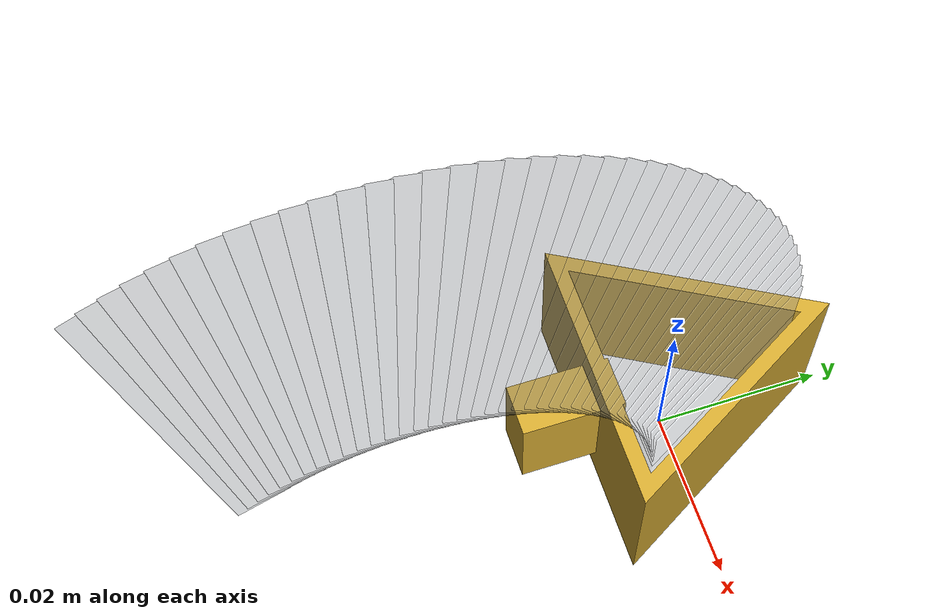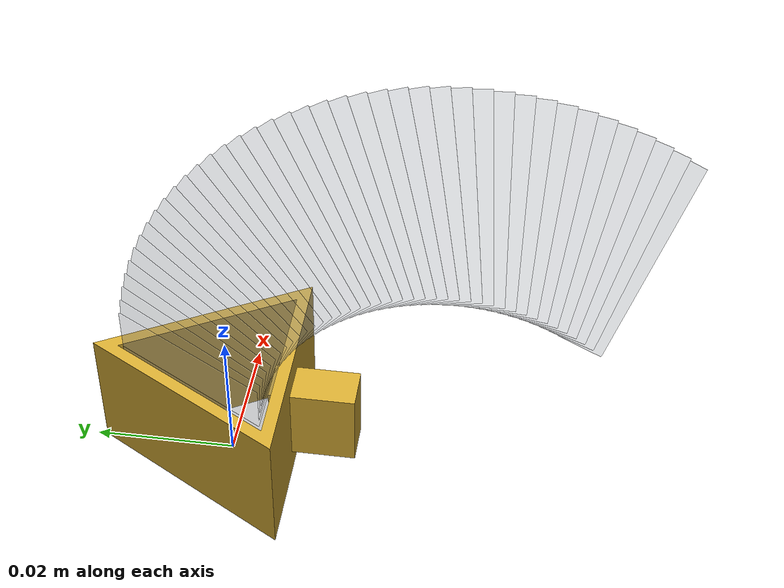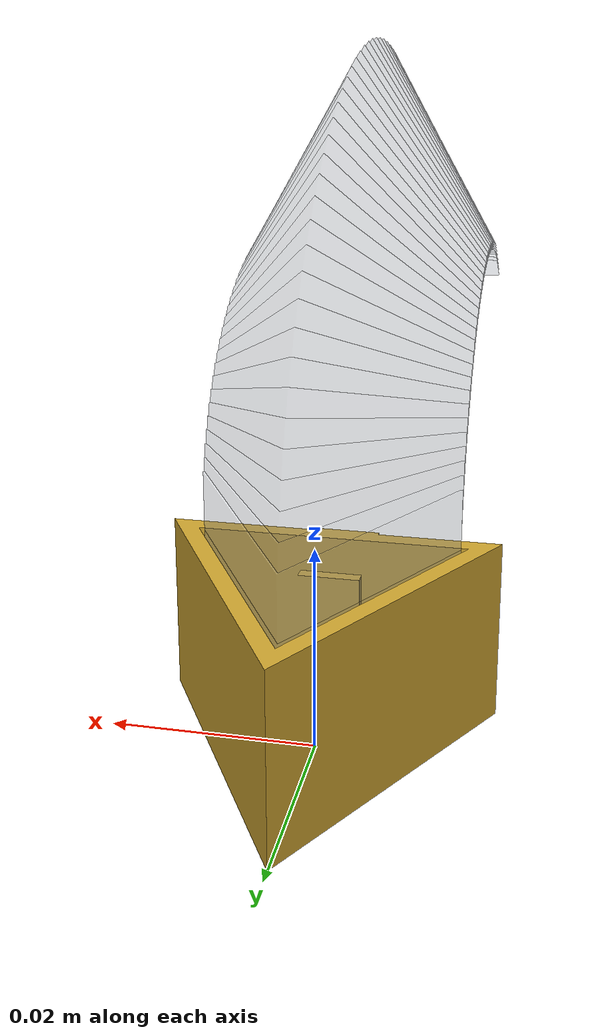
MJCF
<mujoco model="yzipper_program">
  <compiler meshdir="out" angle="radian" autolimits="true"/>
  <option gravity="0 0 0"/>
  <visual><global offwidth="960" offheight="720"/>
    <headlight ambient="0.45 0.45 0.45" diffuse="0.55 0.55 0.55" specular="0.1 0.1 0.1"/>
  </visual>
  <asset>
    <mesh name="segment" file="segment.stl" scale="0.001 0.001 0.001"/>
    <mesh name="slider"  file="slider.stl"  scale="0.001 0.001 0.001"/>
    <material name="rigid"   rgba="0.30 0.70 0.40 1"/>
    <material name="pending" rgba="0.75 0.78 0.82 0.35"/>
    <material name="slider"  rgba="0.85 0.68 0.20 1"/>
  </asset>
  <worldbody>
    <light pos="0.12 0.2 0.28" dir="-0.2 -0.4 -1"/>
    <camera name="iso" pos="0.20 0.20 0.15" xyaxes="-0.728 0.686 0 -0.130 -0.138 0.981"/>
    <geom name="seg0" type="mesh" mesh="segment" material="pending" pos="0.00000 0.00000 0.00000" quat="1.00000 0.00000 0.00000 0.00000" contype="0" conaffinity="0"/><geom name="seg1" type="mesh" mesh="segment" material="pending" pos="0.00000 0.00000 0.00600" quat="1.00000 0.00000 0.00000 0.00000" contype="0" conaffinity="0"/><geom name="seg2" type="mesh" mesh="segment" material="pending" pos="0.00000 0.00000 0.01200" quat="1.00000 0.00000 0.00000 0.00000" contype="0" conaffinity="0"/><geom name="seg3" type="mesh" mesh="segment" material="pending" pos="0.00000 0.00000 0.01800" quat="1.00000 0.00000 0.00000 0.00000" contype="0" conaffinity="0"/><geom name="seg4" type="mesh" mesh="segment" material="pending" pos="0.00000 -0.00009 0.01967" quat="0.99966 0.02618 0.00000 0.00000" contype="0" conaffinity="0"/><geom name="seg5" type="mesh" mesh="segment" material="pending" pos="0.00000 -0.00026 0.02134" quat="0.99863 0.05234 0.00000 0.00000" contype="0" conaffinity="0"/><geom name="seg6" type="mesh" mesh="segment" material="pending" pos="0.00000 -0.00052 0.02299" quat="0.99692 0.07846 0.00000 0.00000" contype="0" conaffinity="0"/><geom name="seg7" type="mesh" mesh="segment" material="pending" pos="0.00000 -0.00087 0.02463" quat="0.99452 0.10453 0.00000 0.00000" contype="0" conaffinity="0"/><geom name="seg8" type="mesh" mesh="segment" material="pending" pos="0.00000 -0.00131 0.02625" quat="0.99144 0.13053 0.00000 0.00000" contype="0" conaffinity="0"/><geom name="seg9" type="mesh" mesh="segment" material="pending" pos="0.00000 -0.00182 0.02785" quat="0.98769 0.15643 0.00000 0.00000" contype="0" conaffinity="0"/><geom name="seg10" type="mesh" mesh="segment" material="pending" pos="0.00000 -0.00243 0.02941" quat="0.98325 0.18224 0.00000 0.00000" contype="0" conaffinity="0"/><geom name="seg11" type="mesh" mesh="segment" material="pending" pos="0.00000 -0.00311 0.03094" quat="0.97815 0.20791 0.00000 0.00000" contype="0" conaffinity="0"/><geom name="seg12" type="mesh" mesh="segment" material="pending" pos="0.00000 -0.00387 0.03243" quat="0.97237 0.23345 0.00000 0.00000" contype="0" conaffinity="0"/><geom name="seg13" type="mesh" mesh="segment" material="pending" pos="0.00000 -0.00471 0.03388" quat="0.96593 0.25882 0.00000 0.00000" contype="0" conaffinity="0"/><geom name="seg14" type="mesh" mesh="segment" material="pending" pos="0.00000 -0.00562 0.03529" quat="0.95882 0.28402 0.00000 0.00000" contype="0" conaffinity="0"/><geom name="seg15" type="mesh" mesh="segment" material="pending" pos="0.00000 -0.00660 0.03664" quat="0.95106 0.30902 0.00000 0.00000" contype="0" conaffinity="0"/><geom name="seg16" type="mesh" mesh="segment" material="pending" pos="0.00000 -0.00766 0.03795" quat="0.94264 0.33381 0.00000 0.00000" contype="0" conaffinity="0"/><geom name="seg17" type="mesh" mesh="segment" material="pending" pos="0.00000 -0.00878 0.03919" quat="0.93358 0.35837 0.00000 0.00000" contype="0" conaffinity="0"/><geom name="seg18" type="mesh" mesh="segment" material="pending" pos="0.00000 -0.00996 0.04038" quat="0.92388 0.38268 0.00000 0.00000" contype="0" conaffinity="0"/><geom name="seg19" type="mesh" mesh="segment" material="pending" pos="0.00000 -0.01121 0.04150" quat="0.91355 0.40674 0.00000 0.00000" contype="0" conaffinity="0"/><geom name="seg20" type="mesh" mesh="segment" material="pending" pos="0.00000 -0.01251 0.04255" quat="0.90259 0.43051 0.00000 0.00000" contype="0" conaffinity="0"/><geom name="seg21" type="mesh" mesh="segment" material="pending" pos="0.00000 -0.01387 0.04354" quat="0.89101 0.45399 0.00000 0.00000" contype="0" conaffinity="0"/><geom name="seg22" type="mesh" mesh="segment" material="pending" pos="0.00000 -0.01527 0.04445" quat="0.87882 0.47716 0.00000 0.00000" contype="0" conaffinity="0"/><geom name="seg23" type="mesh" mesh="segment" material="pending" pos="0.00000 -0.01672 0.04529" quat="0.86603 0.50000 0.00000 0.00000" contype="0" conaffinity="0"/><geom name="seg24" type="mesh" mesh="segment" material="pending" pos="0.00000 -0.01821 0.04605" quat="0.85264 0.52250 0.00000 0.00000" contype="0" conaffinity="0"/><geom name="seg25" type="mesh" mesh="segment" material="pending" pos="0.00000 -0.01975 0.04673" quat="0.83867 0.54464 0.00000 0.00000" contype="0" conaffinity="0"/><geom name="seg26" type="mesh" mesh="segment" material="pending" pos="0.00000 -0.02131 0.04733" quat="0.82413 0.56641 0.00000 0.00000" contype="0" conaffinity="0"/><geom name="seg27" type="mesh" mesh="segment" material="pending" pos="0.00000 -0.02290 0.04785" quat="0.80902 0.58779 0.00000 0.00000" contype="0" conaffinity="0"/><geom name="seg28" type="mesh" mesh="segment" material="pending" pos="0.00000 -0.02452 0.04828" quat="0.79335 0.60876 0.00000 0.00000" contype="0" conaffinity="0"/><geom name="seg29" type="mesh" mesh="segment" material="pending" pos="0.00000 -0.02616 0.04863" quat="0.77715 0.62932 0.00000 0.00000" contype="0" conaffinity="0"/><geom name="seg30" type="mesh" mesh="segment" material="pending" pos="0.00000 -0.02782 0.04889" quat="0.76041 0.64945 0.00000 0.00000" contype="0" conaffinity="0"/><geom name="seg31" type="mesh" mesh="segment" material="pending" pos="0.00000 -0.02948 0.04907" quat="0.74314 0.66913 0.00000 0.00000" contype="0" conaffinity="0"/><geom name="seg32" type="mesh" mesh="segment" material="pending" pos="0.00000 -0.03115 0.04915" quat="0.72537 0.68835 0.00000 0.00000" contype="0" conaffinity="0"/><geom name="seg33" type="mesh" mesh="segment" material="pending" pos="0.00000 -0.03283 0.04915" quat="0.70711 0.70711 0.00000 0.00000" contype="0" conaffinity="0"/><geom name="seg34" type="mesh" mesh="segment" material="pending" pos="0.00000 -0.03450 0.04907" quat="0.68835 0.72537 0.00000 0.00000" contype="0" conaffinity="0"/><geom name="seg35" type="mesh" mesh="segment" material="pending" pos="0.00000 -0.03617 0.04889" quat="0.66913 0.74314 0.00000 0.00000" contype="0" conaffinity="0"/><geom name="seg36" type="mesh" mesh="segment" material="pending" pos="0.00000 -0.03782 0.04863" quat="0.64945 0.76041 0.00000 0.00000" contype="0" conaffinity="0"/><geom name="seg37" type="mesh" mesh="segment" material="pending" pos="0.00000 -0.03946 0.04828" quat="0.62932 0.77715 0.00000 0.00000" contype="0" conaffinity="0"/><geom name="seg38" type="mesh" mesh="segment" material="pending" pos="0.00000 -0.04108 0.04785" quat="0.60876 0.79335 0.00000 0.00000" contype="0" conaffinity="0"/><geom name="seg39" type="mesh" mesh="segment" material="pending" pos="0.00000 -0.04268 0.04733" quat="0.58779 0.80902 0.00000 0.00000" contype="0" conaffinity="0"/><geom name="seg40" type="mesh" mesh="segment" material="pending" pos="0.00000 -0.04424 0.04673" quat="0.56641 0.82413 0.00000 0.00000" contype="0" conaffinity="0"/><geom name="seg41" type="mesh" mesh="segment" material="pending" pos="0.00000 -0.04577 0.04605" quat="0.54464 0.83867 0.00000 0.00000" contype="0" conaffinity="0"/><geom name="seg42" type="mesh" mesh="segment" material="pending" pos="0.00000 -0.04726 0.04529" quat="0.52250 0.85264 0.00000 0.00000" contype="0" conaffinity="0"/>
    <body name="slider" pos="0 0 0">
      <freejoint name="slidepose"/>
      <geom type="mesh" mesh="slider" material="slider" contype="0" conaffinity="0"/>
    </body>
  </worldbody>
</mujoco>
